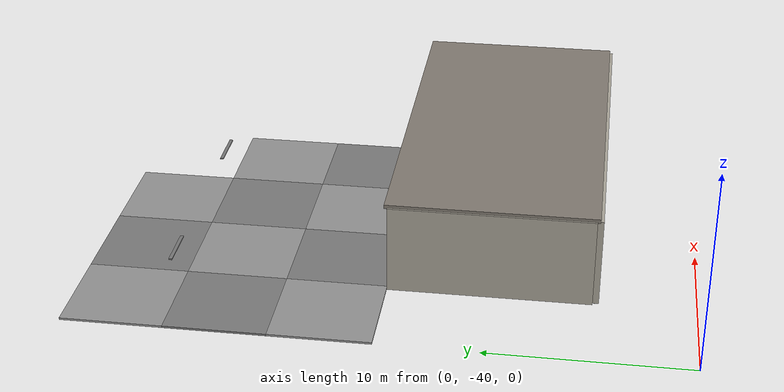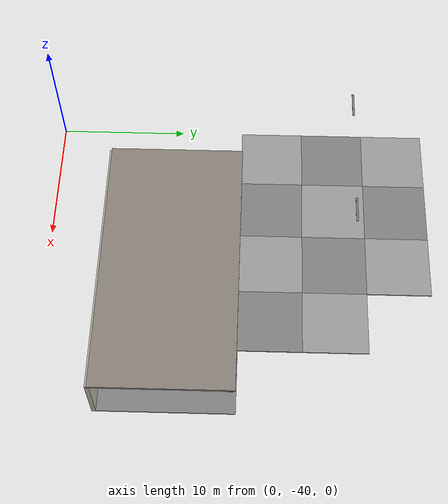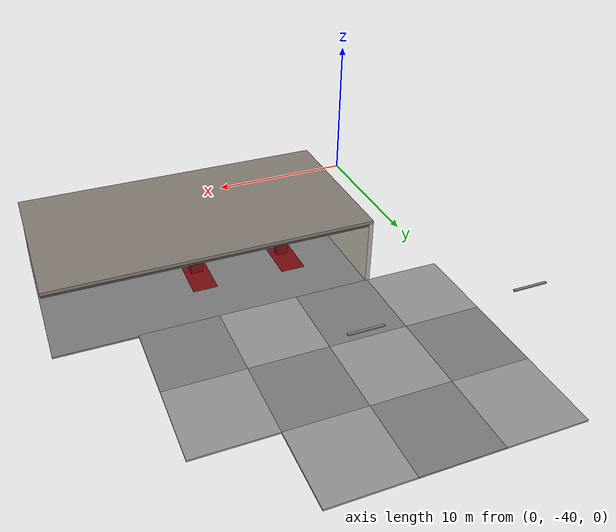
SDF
<sdf version="1.10">
 <world name="airport_terminal_world">
  <model name="vtile_5_0">
   <static>true</static>
   <pose>2.5 -22.5 0.05 0 0 0</pose>
   <link name="link">
    <visual name="vis">
     <geometry><box><size>5.0 5.0 0.1</size></box></geometry>
     <material><ambient>0.62 0.62 0.62 1.0</ambient><diffuse>0.62 0.62 0.62 1.0</diffuse></material>
    </visual>
   </link>
  </model>
  <model name="vtile_5_1">
   <static>true</static>
   <pose>2.5 -17.5 0.05 0 0 0</pose>
   <link name="link">
    <visual name="vis">
     <geometry><box><size>5.0 5.0 0.1</size></box></geometry>
     <material><ambient>0.52 0.52 0.52 1.0</ambient><diffuse>0.52 0.52 0.52 1.0</diffuse></material>
    </visual>
   </link>
  </model>
  <model name="vtile_5_2">
   <static>true</static>
   <pose>2.5 -12.5 0.05 0 0 0</pose>
   <link name="link">
    <visual name="vis">
     <geometry><box><size>5.0 5.0 0.1</size></box></geometry>
     <material><ambient>0.62 0.62 0.62 1.0</ambient><diffuse>0.62 0.62 0.62 1.0</diffuse></material>
    </visual>
   </link>
  </model>
  <model name="vtile_6_0">
   <static>true</static>
   <pose>7.5 -22.5 0.05 0 0 0</pose>
   <link name="link">
    <visual name="vis">
     <geometry><box><size>5.0 5.0 0.1</size></box></geometry>
     <material><ambient>0.52 0.52 0.52 1.0</ambient><diffuse>0.52 0.52 0.52 1.0</diffuse></material>
    </visual>
   </link>
  </model>
  <model name="vtile_6_1">
   <static>true</static>
   <pose>7.5 -17.5 0.05 0 0 0</pose>
   <link name="link">
    <visual name="vis">
     <geometry><box><size>5.0 5.0 0.1</size></box></geometry>
     <material><ambient>0.62 0.62 0.62 1.0</ambient><diffuse>0.62 0.62 0.62 1.0</diffuse></material>
    </visual>
   </link>
  </model>
  <model name="vtile_6_2">
   <static>true</static>
   <pose>7.5 -12.5 0.05 0 0 0</pose>
   <link name="link">
    <visual name="vis">
     <geometry><box><size>5.0 5.0 0.1</size></box></geometry>
     <material><ambient>0.52 0.52 0.52 1.0</ambient><diffuse>0.52 0.52 0.52 1.0</diffuse></material>
    </visual>
   </link>
  </model>
  <model name="vtile_7_0">
   <static>true</static>
   <pose>12.5 -22.5 0.05 0 0 0</pose>
   <link name="link">
    <visual name="vis">
     <geometry><box><size>5.0 5.0 0.1</size></box></geometry>
     <material><ambient>0.62 0.62 0.62 1.0</ambient><diffuse>0.62 0.62 0.62 1.0</diffuse></material>
    </visual>
   </link>
  </model>
  <model name="vtile_7_1">
   <static>true</static>
   <pose>12.5 -17.5 0.05 0 0 0</pose>
   <link name="link">
    <visual name="vis">
     <geometry><box><size>5.0 5.0 0.1</size></box></geometry>
     <material><ambient>0.52 0.52 0.52 1.0</ambient><diffuse>0.52 0.52 0.52 1.0</diffuse></material>
    </visual>
   </link>
  </model>
  <model name="vtile_7_2">
   <static>true</static>
   <pose>12.5 -12.5 0.05 0 0 0</pose>
   <link name="link">
    <visual name="vis">
     <geometry><box><size>5.0 5.0 0.1</size></box></geometry>
     <material><ambient>0.62 0.62 0.62 1.0</ambient><diffuse>0.62 0.62 0.62 1.0</diffuse></material>
    </visual>
   </link>
  </model>
  <model name="vtile_8_0">
   <static>true</static>
   <pose>17.5 -22.5 0.05 0 0 0</pose>
   <link name="link">
    <visual name="vis">
     <geometry><box><size>5.0 5.0 0.1</size></box></geometry>
     <material><ambient>0.52 0.52 0.52 1.0</ambient><diffuse>0.52 0.52 0.52 1.0</diffuse></material>
    </visual>
   </link>
  </model>
  <model name="vtile_8_1">
   <static>true</static>
   <pose>17.5 -17.5 0.05 0 0 0</pose>
   <link name="link">
    <visual name="vis">
     <geometry><box><size>5.0 5.0 0.1</size></box></geometry>
     <material><ambient>0.62 0.62 0.62 1.0</ambient><diffuse>0.62 0.62 0.62 1.0</diffuse></material>
    </visual>
   </link>
  </model>
  <model name="lamp_d_0_strip">
   <static>true</static>
   <pose>0 -16.0 4.42 0 0 0</pose>
   <link name="link">
    <visual name="strip">
     <geometry><box><size>2.0 0.12 0.04</size></box></geometry>
     <material>
      <ambient>0.95 0.95 0.88 1.0</ambient>
      <diffuse>0.95 0.95 0.88 1.0</diffuse>
      <emissive>0.35 0.35 0.3 1.0</emissive>
     </material>
    </visual>
    <visual name="housing">
     <pose>0 0 0.03 0 0 0</pose>
     <geometry><box><size>2.1 0.16 0.06</size></box></geometry>
     <material><ambient>0.5 0.5 0.5 1.0</ambient><diffuse>0.5 0.5 0.5 1.0</diffuse></material>
    </visual>
   </link>
  </model>
  <model name="lamp_d_10_strip">
   <static>true</static>
   <pose>10.0 -16.0 4.42 0 0 0</pose>
   <link name="link">
    <visual name="strip">
     <geometry><box><size>2.0 0.12 0.04</size></box></geometry>
     <material>
      <ambient>0.95 0.95 0.88 1.0</ambient>
      <diffuse>0.95 0.95 0.88 1.0</diffuse>
      <emissive>0.35 0.35 0.3 1.0</emissive>
     </material>
    </visual>
    <visual name="housing">
     <pose>0 0 0.03 0 0 0</pose>
     <geometry><box><size>2.1 0.16 0.06</size></box></geometry>
     <material><ambient>0.5 0.5 0.5 1.0</ambient><diffuse>0.5 0.5 0.5 1.0</diffuse></material>
    </visual>
   </link>
  </model>
  <model name="charging_station_2">
   <static>true</static>
   <pose>15.0 -30.0 0.5 0 0 0</pose>
   <link name="link">
    <visual name="vis">
     <geometry><box><size>0.8 0.5 1.0</size></box></geometry>
     <material><ambient>0.5 0.05 0.05 1.0</ambient><diffuse>0.5 0.05 0.05 1.0</diffuse></material>
    </visual>
   </link>
  </model>
  <model name="charge_pad_2">
   <static>true</static>
   <pose>15.0 -29.2 0.051 0 0 0</pose>
   <link name="link">
    <visual name="vis">
     <geometry><box><size>1.6 2.75 0.1</size></box></geometry>
     <material><ambient>0.5 0.05 0.05 1.0</ambient><diffuse>0.5 0.05 0.05 1.0</diffuse></material>
    </visual>
   </link>
  </model>
  <model name="charging_station_3">
   <static>true</static>
   <pose>9.0 -30.0 0.5 0 0 0</pose>
   <link name="link">
    <visual name="vis">
     <geometry><box><size>0.8 0.5 1.0</size></box></geometry>
     <material><ambient>0.5 0.05 0.05 1.0</ambient><diffuse>0.5 0.05 0.05 1.0</diffuse></material>
    </visual>
   </link>
  </model>
  <model name="charge_pad_3">
   <static>true</static>
   <pose>9.0 -29.2 0.051 0 0 0</pose>
   <link name="link">
    <visual name="vis">
     <geometry><box><size>1.6 2.75 0.1</size></box></geometry>
     <material><ambient>0.5 0.05 0.05 1.0</ambient><diffuse>0.5 0.05 0.05 1.0</diffuse></material>
    </visual>
   </link>
  </model>
  <model name="garage_wall_west">
   <static>true</static>
   <pose>5.0 -30.0 2.25 0 0 0</pose>
   <link name="link">
    <collision name="col"><geometry><box><size>0.3 10.0 4.5</size></box></geometry></collision>
    <visual name="vis">
     <geometry><box><size>0.3 10.0 4.5</size></box></geometry>
     <material><ambient>0.72 0.7 0.65 1.0</ambient><diffuse>0.72 0.7 0.65 1.0</diffuse></material>
    </visual>
   </link>
  </model>
  <model name="garage_wall_south">
   <static>true</static>
   <pose>15.0 -35.15 2.25 0 0 0</pose>
   <link name="link">
    <collision name="col"><geometry><box><size>20.0 0.3 4.5</size></box></geometry></collision>
    <visual name="vis">
     <geometry><box><size>20.0 0.3 4.5</size></box></geometry>
     <material><ambient>0.72 0.7 0.65 1.0</ambient><diffuse>0.72 0.7 0.65 1.0</diffuse></material>
    </visual>
   </link>
  </model>
  <model name="garage_floor">
   <static>true</static>
   <pose>15.0 -30.0 0.049 0 0 0</pose>
   <link name="link">
    <visual name="vis">
     <geometry><box><size>20.0 10.25 0.1</size></box></geometry>
     <material><ambient>0.52 0.52 0.52 1.0</ambient><diffuse>0.52 0.52 0.52 1.0</diffuse></material>
    </visual>
   </link>
  </model>
  <model name="garage_roof">
   <static>true</static>
   <pose>15.0 -30.0 4.55 0 0 0</pose>
   <link name="link">
    <collision name="col"><geometry><box><size>20.1 10.3 0.2</size></box></geometry></collision>
    <visual name="vis">
     <geometry><box><size>20.1 10.3 0.2</size></box></geometry>
     <material><ambient>0.55 0.52 0.48 1.0</ambient><diffuse>0.55 0.52 0.48 1.0</diffuse></material>
    </visual>
   </link>
  </model>
  <model name="garage_door_frame_t">
   <static>true</static>
   <pose>15.0 -25.15 4.35 0 0 0</pose>
   <link name="link">
    <collision name="col"><geometry><box><size>20.0 0.3 0.3</size></box></geometry></collision>
    <visual name="vis">
     <geometry><box><size>20.0 0.3 0.3</size></box></geometry>
     <material><ambient>0.3 0.3 0.3 1.0</ambient><diffuse>0.3 0.3 0.3 1.0</diffuse></material>
    </visual>
   </link>
  </model>
  <model name="garage_lamp_strip">
   <static>true</static>
   <pose>15.0 -28.0 4.42 0 0 0</pose>
   <link name="link">
    <visual name="strip">
     <geometry><box><size>10.7 0.12 0.04</size></box></geometry>
     <material>
      <ambient>0.95 0.95 0.88 1.0</ambient>
      <diffuse>0.95 0.95 0.88 1.0</diffuse>
      <emissive>0.35 0.35 0.3 1.0</emissive>
     </material>
    </visual>
    <visual name="housing">
     <pose>0 0 0.03 0 0 0</pose>
     <geometry><box><size>10.8 0.16 0.06</size></box></geometry>
     <material><ambient>0.5 0.5 0.5 1.0</ambient><diffuse>0.5 0.5 0.5 1.0</diffuse></material>
    </visual>
   </link>
  </model>
  <model name="camera_garage_mount">
   <static>true</static>
   <pose>15.0 -34.5 4.3 0 0 0</pose>
   <link name="link">
    <visual name="vis">
     <geometry><box><size>0.15 0.15 0.08</size></box></geometry>
     <material><ambient>0.1 0.1 0.1 1.0</ambient><diffuse>0.1 0.1 0.1 1.0</diffuse></material>
    </visual>
   </link>
  </model>
  <model name="camera_garage_body">
   <static>true</static>
   <pose>15.0 -34.5 4.15 0 0 0</pose>
   <link name="link">
    <visual name="vis">
     <geometry><cylinder><radius>0.05</radius><length>0.16</length></cylinder></geometry>
     <material><ambient>0.12 0.12 0.12 1.0</ambient><diffuse>0.12 0.12 0.12 1.0</diffuse></material>
    </visual>
    <sensor name="camera_garage" type="camera">
     <pose>0 0 0 0 0.5 1.5708</pose>
     <topic>/surveillance/garage</topic>
     <update_rate>10.0</update_rate>
     <camera>
      <horizontal_fov>1.3</horizontal_fov>
      <image><width>1280.0</width><height>720.0</height></image>
      <clip><near>0.1</near><far>70.0</far></clip>
     </camera>
     <always_on>false</always_on>
     <visualize>false</visualize>
    </sensor>
   </link>
  </model>
 </world>
</sdf>
